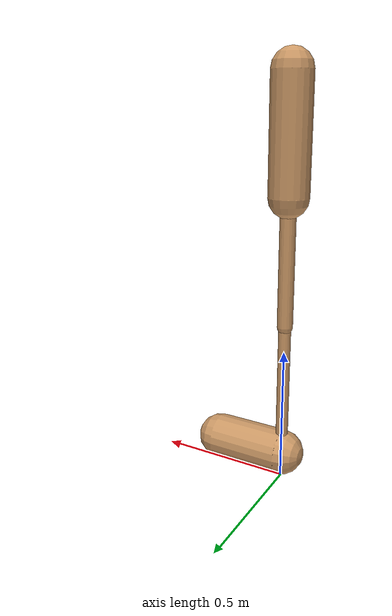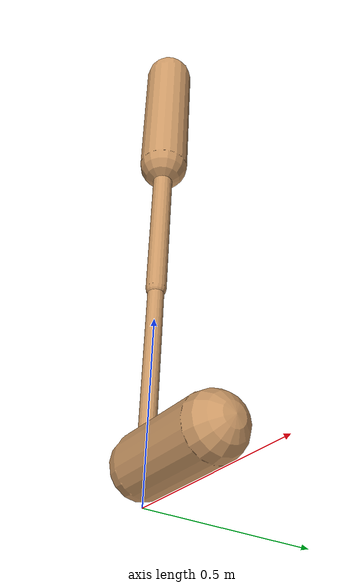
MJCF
<mujoco model="walker2d">
  <compiler angle="degree" coordinate="global" inertiafromgeom="true" />
  <default>
    <joint armature="0.01" damping=".1" limited="true" />
    <geom conaffinity="0" condim="3" contype="1" density="1000" friction="0.8 .1 .1" rgba="0.8 0.6 .4 1" />
  </default>
  <option integrator="RK4" timestep="0.002" />
  <worldbody>

    <body name="torso" pos="0 0 0.00503561534697079">
      <joint armature="0" axis="1 0 0" damping="0" limited="false" name="ignorex" pos="0 0 0" stiffness="0" type="slide" />
      <joint armature="0" axis="0 0 1" damping="0" limited="false" name="ignorez" pos="0 0 0" ref="1.25" stiffness="0" type="slide" />
      <joint armature="0" axis="0 1 0" damping="0" limited="false" name="ignorey" pos="0 0 0" stiffness="0" type="hinge" />
      <geom fromto="0 0 1.45 0 0 1.05" name="torso_geom" size="0.07046429700177834" type="capsule" />
      <body name="thigh">
        <joint axis="0 -1 0" name="thigh_joint" pos="0 0 1.05" range="-150 0" type="hinge" />
        <geom fromto="0.0 0.0 1.05 0.0 0.0 0.5976147085198559" name="thigh_geom" size="0.028041612957010433" type="capsule" />
        <body name="leg" pos="0.0 0.0 -0.0023852914801441027">
          <joint axis="0 -1 0" name="leg_joint" pos="0 0 0.6" range="-150 0" type="hinge" />
          <geom fromto="0.0 0.0 0.6 0.0 0.0 0.09734967613317327" name="leg_geom" size="0.022433290365608344" type="capsule" />
          <body name="foot" pos="0.0 0.0 -0.0026503238668267315">
            <joint axis="0 -1 0" name="foot_joint" pos="0 0 0.1" range="-45 45" type="hinge" />
            <geom fromto="-0.0 0.0 0.09999999999999999 0.2607426794522407 0.0 0.09999999999999999" name="foot_geom" size="0.08306013424040472" type="capsule" />
          </body>
        </body>
      </body>

      <body name="thigh_left">
        <joint axis="0 -1 0" name="thigh_left_joint" pos="0 0 1.05" range="-150 0" type="hinge" />
        <geom fromto="0.0 0.0 1.05 0.0 0.0 0.5976147085198559" name="thigh_left_geom" rgba=".7 .3 .6 1" size="0.028041612957010433" type="capsule" />
        <body name="leg_left" pos="0.0 0.0 -0.0023852914801441027">
          <joint axis="0 -1 0" name="leg_left_joint" pos="0 0 0.6" range="-150 0" type="hinge" />
          <geom fromto="0.0 0.0 0.6 0.0 0.0 0.09734967613317327" name="leg_left_geom" rgba=".7 .3 .6 1" size="0.022433290365608344" type="capsule" />
          <body name="foot_left" pos="0.0 0.0 -0.0026503238668267315">
            <joint axis="0 -1 0" name="foot_left_joint" pos="0 0 0.1" range="-45 45" type="hinge" />
            <geom fromto="-0.0 0.0 0.09999999999999999 0.2607426794522407 0.0 0.09999999999999999" name="foot_left_geom" rgba=".7 .3 .6 1" size="0.08306013424040472" type="capsule" />
          </body>
        </body>
      </body>
    </body>
  </worldbody>
  <actuator>

    <motor ctrllimited="true" ctrlrange="-1.0 1.0" gear="100" joint="thigh_joint" />
    <motor ctrllimited="true" ctrlrange="-1.0 1.0" gear="100" joint="leg_joint" />
    <motor ctrllimited="true" ctrlrange="-1.0 1.0" gear="100" joint="foot_joint" />
    <motor ctrllimited="true" ctrlrange="-1.0 1.0" gear="100" joint="thigh_left_joint" />
    <motor ctrllimited="true" ctrlrange="-1.0 1.0" gear="100" joint="leg_left_joint" />
    <motor ctrllimited="true" ctrlrange="-1.0 1.0" gear="100" joint="foot_left_joint" />

  </actuator>
</mujoco>
